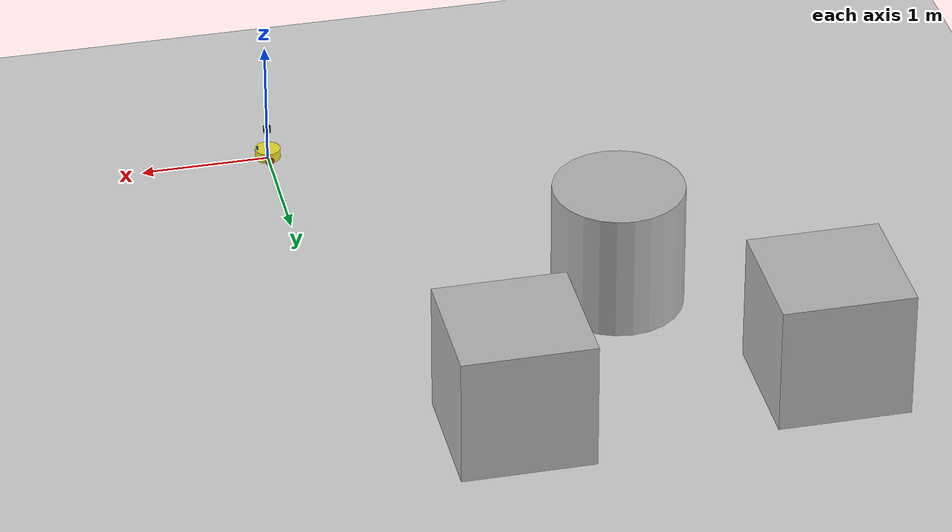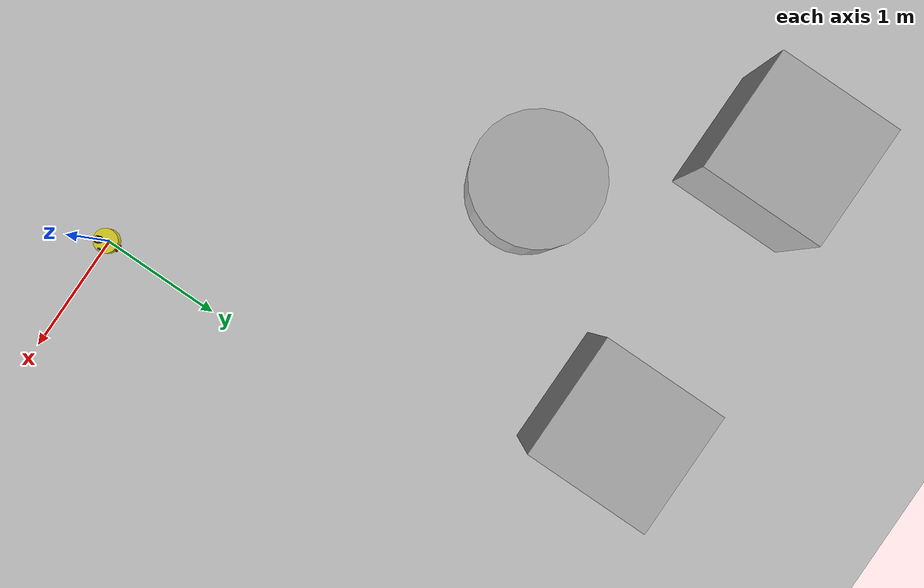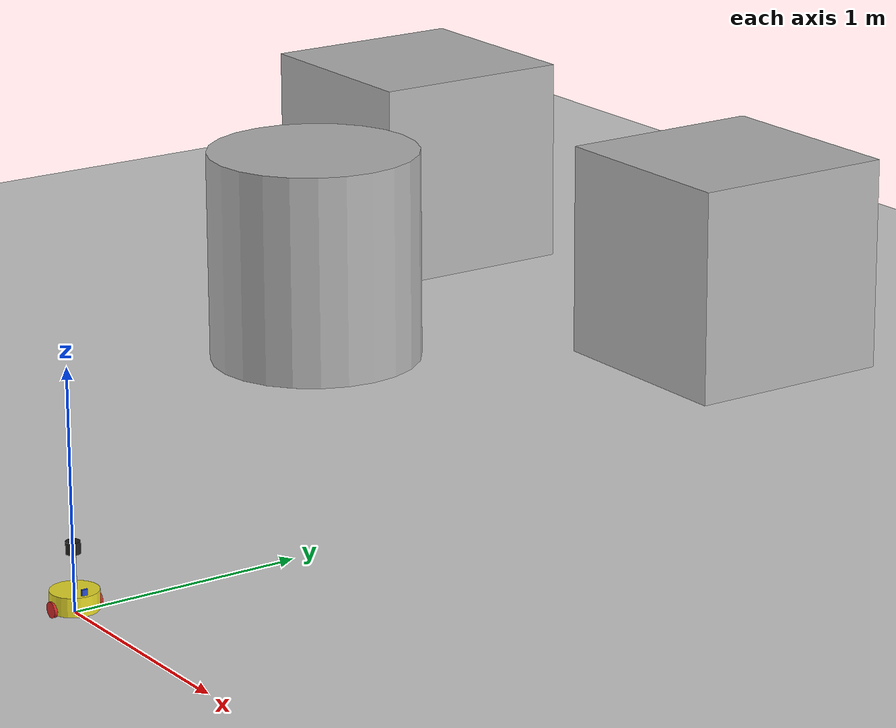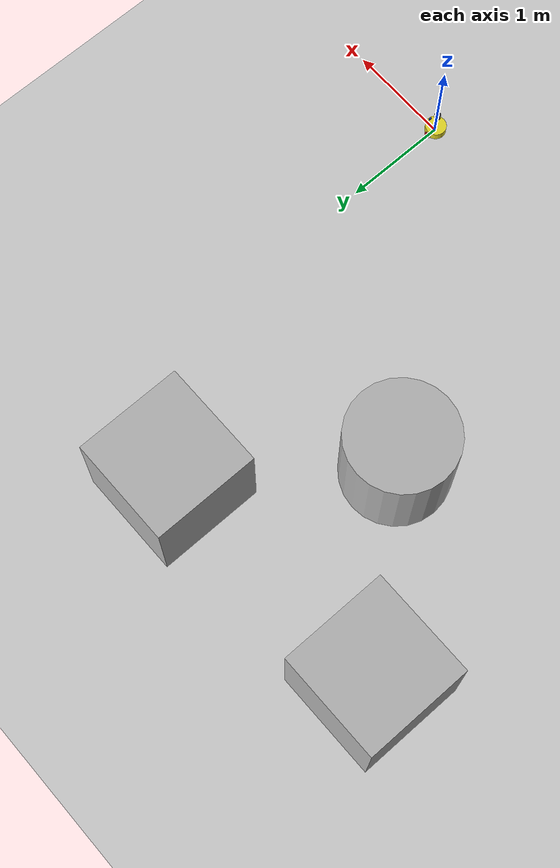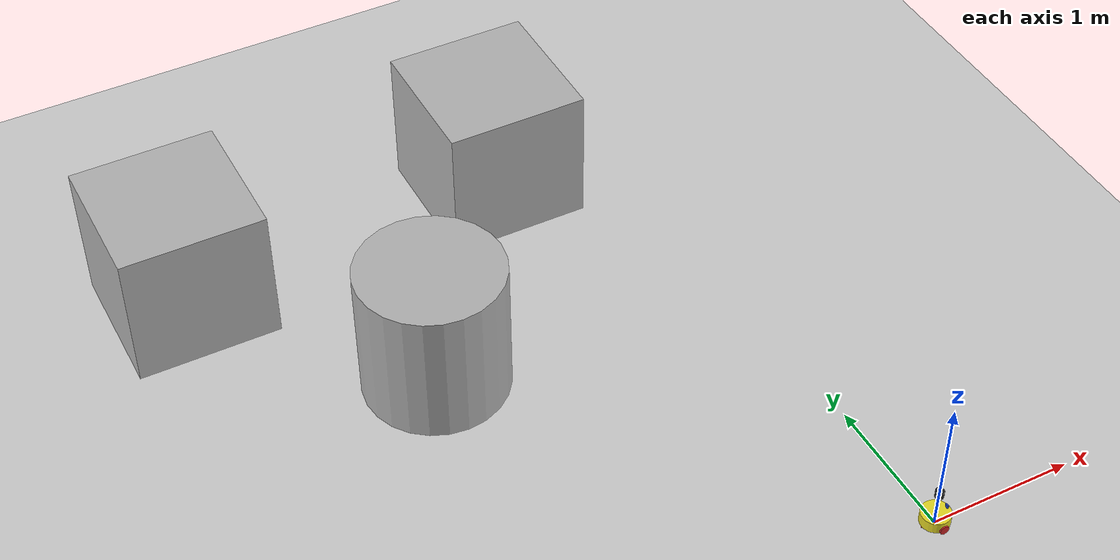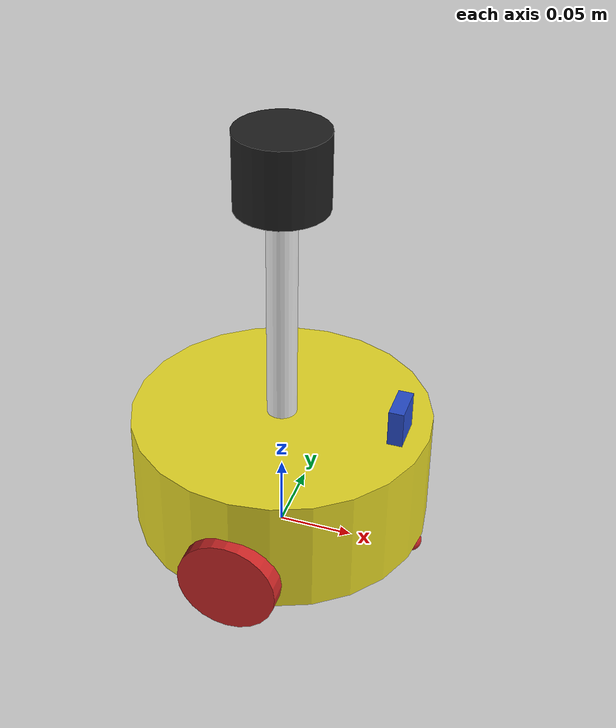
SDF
<sdf version='1.10'>
  <world name='car_demo'>
    <physics name='1ms' type='ignored'>
      <max_step_size>0.001</max_step_size>
      <real_time_factor>1</real_time_factor>
      <real_time_update_rate>1000</real_time_update_rate>
    </physics>
    <plugin name='gz::sim::systems::Physics' filename='gz-sim-physics-system'/>
    <plugin name='gz::sim::systems::UserCommands' filename='gz-sim-user-commands-system'/>
    <plugin name='gz::sim::systems::SceneBroadcaster' filename='gz-sim-scene-broadcaster-system'/>
    <plugin name='gz::sim::systems::Contact' filename='gz-sim-contact-system'/>
    <gravity>0 0 -9.8000000000000007</gravity>
    <magnetic_field>5.5644999999999998e-06 2.2875799999999999e-05 -4.2388400000000002e-05</magnetic_field>
    <atmosphere type='adiabatic'/>
    <scene>
      <ambient>0.400000006 0.400000006 0.400000006 1</ambient>
      <background>0.699999988 0.699999988 0.699999988 1</background>
      <shadows>true</shadows>
    </scene>
    <model name='ground_plane'>
      <static>true</static>
      <link name='link'>
        <collision name='collision'>
          <geometry>
            <plane>
              <normal>0 0 1</normal>
              <size>100 100</size>
            </plane>
          </geometry>
          <surface>
            <friction>
              <ode/>
            </friction>
            <bounce/>
            <contact/>
          </surface>
        </collision>
        <visual name='visual'>
          <geometry>
            <plane>
              <normal>0 0 1</normal>
              <size>100 100</size>
            </plane>
          </geometry>
          <material>
            <ambient>0.800000012 0.800000012 0.800000012 1</ambient>
            <diffuse>0.800000012 0.800000012 0.800000012 1</diffuse>
            <specular>0.800000012 0.800000012 0.800000012 1</specular>
          </material>
        </visual>
        <pose>0 0 0 0 0 0</pose>
        <inertial>
          <pose>0 0 0 0 0 0</pose>
          <mass>1</mass>
          <inertia>
            <ixx>1</ixx>
            <ixy>0</ixy>
            <ixz>0</ixz>
            <iyy>1</iyy>
            <iyz>0</iyz>
            <izz>1</izz>
          </inertia>
        </inertial>
        <enable_wind>false</enable_wind>
      </link>
      <pose>0 0 0 0 0 0</pose>
      <self_collide>false</self_collide>
    </model>
    <model name='box'>
      <pose>-1.0600000000000001 4.0599999999999996 0.5 0 0 0</pose>
      <link name='box_link'>
        <inertial>
          <inertia>
            <ixx>0.16666</ixx>
            <ixy>0</ixy>
            <ixz>0</ixz>
            <iyy>0.16666</iyy>
            <iyz>0</iyz>
            <izz>0.16666</izz>
          </inertia>
          <mass>1</mass>
          <pose>0 0 0 0 0 0</pose>
        </inertial>
        <collision name='box_collision'>
          <geometry>
            <box>
              <size>1 1 1</size>
            </box>
          </geometry>
          <surface>
            <friction>
              <ode/>
            </friction>
            <bounce/>
            <contact/>
          </surface>
        </collision>
        <visual name='box_visual'>
          <geometry>
            <box>
              <size>1 1 1</size>
            </box>
          </geometry>
          <material>
            <ambient>0.300000012 0.300000012 0.300000012 1</ambient>
            <diffuse>0.699999988 0.699999988 0.699999988 1</diffuse>
            <specular>1 1 1 1</specular>
          </material>
        </visual>
        <pose>0 0 0 0 0 0</pose>
        <enable_wind>false</enable_wind>
      </link>
      <static>false</static>
      <self_collide>false</self_collide>
    </model>
    <model name='cylinder'>
      <pose>-2.2032100243610824 2.5264647243480418 0.5 0 0 0</pose>
      <link name='cylinder_link'>
        <inertial>
          <inertia>
            <ixx>0.14580000000000001</ixx>
            <ixy>0</ixy>
            <ixz>0</ixz>
            <iyy>0.14580000000000001</iyy>
            <iyz>0</iyz>
            <izz>0.125</izz>
          </inertia>
          <mass>1</mass>
          <pose>0 0 0 0 0 0</pose>
        </inertial>
        <collision name='cylinder_collision'>
          <geometry>
            <cylinder>
              <radius>0.5</radius>
              <length>1</length>
            </cylinder>
          </geometry>
          <surface>
            <friction>
              <ode/>
            </friction>
            <bounce/>
            <contact/>
          </surface>
        </collision>
        <visual name='cylinder_visual'>
          <geometry>
            <cylinder>
              <radius>0.5</radius>
              <length>1</length>
            </cylinder>
          </geometry>
          <material>
            <ambient>0.300000012 0.300000012 0.300000012 1</ambient>
            <diffuse>0.699999988 0.699999988 0.699999988 1</diffuse>
            <specular>1 1 1 1</specular>
          </material>
        </visual>
        <pose>0 0 0 0 0 0</pose>
        <enable_wind>false</enable_wind>
      </link>
      <static>false</static>
      <self_collide>false</self_collide>
    </model>
    <model name='box_0'>
      <pose>-3.4326249775634334 3.9361975111597598 0.5 0 0 0</pose>
      <link name='box_link'>
        <inertial>
          <inertia>
            <ixx>0.16666</ixx>
            <ixy>0</ixy>
            <ixz>0</ixz>
            <iyy>0.16666</iyy>
            <iyz>0</iyz>
            <izz>0.16666</izz>
          </inertia>
          <mass>1</mass>
          <pose>0 0 0 0 0 0</pose>
        </inertial>
        <collision name='box_collision'>
          <geometry>
            <box>
              <size>1 1 1</size>
            </box>
          </geometry>
          <surface>
            <friction>
              <ode/>
            </friction>
            <bounce/>
            <contact/>
          </surface>
        </collision>
        <visual name='box_visual'>
          <geometry>
            <box>
              <size>1 1 1</size>
            </box>
          </geometry>
          <material>
            <ambient>0.300000012 0.300000012 0.300000012 1</ambient>
            <diffuse>0.699999988 0.699999988 0.699999988 1</diffuse>
            <specular>1 1 1 1</specular>
          </material>
        </visual>
        <pose>0 0 0 0 0 0</pose>
        <enable_wind>false</enable_wind>
      </link>
      <static>false</static>
      <self_collide>false</self_collide>
    </model>

    <model name="my_car">
      <self_collide>true</self_collide>
      <pose>0 0 0 0 0 0</pose>
      <include merge="true">
        <uri>urdf/my_car.sdf</uri>
      </include>

      <plugin
        filename="gz-sim-joint-state-publisher-system"
        name="ignition::gazebo::systems::JointStatePublisher">
      </plugin>

      <plugin
        filename="gz-sim-pose-publisher-system"
        name="ignition::gazebo::systems::PosePublisher">
        <publish_link_pose>true</publish_link_pose>
        <use_pose_vector_msg>true</use_pose_vector_msg>
        <static_publisher>true</static_publisher>
        <static_update_frequency>1</static_update_frequency>
        <update_frequency>1</update_frequency>
      </plugin>

      <!-- https://gazebosim.org/api/sim/8/classgz_1_1sim_1_1systems_1_1OdometryPublisher.html -->
      <plugin
        filename="gz-sim-odometry-publisher-system"
        name="ignition::gazebo::systems::OdometryPublisher">
        <odom_frame>my_car/odom</odom_frame>
        <robot_base_frame>my_car</robot_base_frame>
      </plugin>

      <plugin
          filename="gz-sim-sensors-system"
          name="gz::sim::systems::Sensors">
          <render_engine>ogre2</render_engine>
      </plugin>

    </model>

    <light name='sun' type='directional'>
      <pose>0 0 10 0 0 0</pose>
      <cast_shadows>true</cast_shadows>
      <intensity>1</intensity>
      <direction>-0.5 0.10000000000000001 -0.90000000000000002</direction>
      <diffuse>0.800000012 0.800000012 0.800000012 1</diffuse>
      <specular>0.200000003 0.200000003 0.200000003 1</specular>
      <attenuation>
        <range>1000</range>
        <linear>0.01</linear>
        <constant>0.90000000000000002</constant>
        <quadratic>0.001</quadratic>
      </attenuation>
      <spot>
        <inner_angle>0</inner_angle>
        <outer_angle>0</outer_angle>
        <falloff>0</falloff>
      </spot>
    </light>
  </world>
</sdf>

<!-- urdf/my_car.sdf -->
<sdf version='1.11'>
  <model name='my_car'>
    <link name='base_footprint'>
      <inertial>
        <pose>0 0 0 0 0 0</pose>
        <mass>0.01</mass>
        <inertia>
          <ixx>0</ixx>
          <ixy>0</ixy>
          <ixz>0</ixz>
          <iyy>0</iyy>
          <iyz>0</iyz>
          <izz>0</izz>
        </inertia>
      </inertial>
      <visual name='base_footprint_visual'>
        <pose>0 0 0 0 0 0</pose>
        <geometry>
          <sphere>
            <radius>0.001</radius>
          </sphere>
        </geometry>
      </visual>
    </link>
    <joint name='base_link2base_footprint' type='fixed'>
      <pose relative_to='base_footprint'>0 0 0.055 0 0 0</pose>
      <parent>base_footprint</parent>
      <child>base_link</child>
      <axis>
        <dynamics>
          <spring_reference>0</spring_reference>
          <spring_stiffness>0</spring_stiffness>
        </dynamics>
        <xyz>0 0 1</xyz>
        <limit>
          <lower>-inf</lower>
          <upper>inf</upper>
        </limit>
      </axis>
      <physics>
        <ode>
          <limit>
            <cfm>0</cfm>
            <erp>0.20000000000000001</erp>
          </limit>
        </ode>
      </physics>
    </joint>
    <link name='base_link'>
      <pose relative_to='base_link2base_footprint'>0 0 0 0 0 0</pose>
      <inertial>
        <pose>0 0 0 0 0 0</pose>
        <mass>0.5</mass>
        <inertia>
          <ixx>0.001516666666666667</ixx>
          <ixy>0</ixy>
          <ixz>0</ixz>
          <iyy>0.001516666666666667</iyy>
          <iyz>0</iyz>
          <izz>0.0025000000000000001</izz>
        </inertia>
      </inertial>
      <collision name='base_link_collision'>
        <pose>0 0 0 0 0 0</pose>
        <geometry>
          <cylinder>
            <length>0.080000000000000002</length>
            <radius>0.10000000000000001</radius>
          </cylinder>
        </geometry>
        <surface>
          <contact>
            <ode/>
          </contact>
          <friction>
            <ode/>
          </friction>
        </surface>
      </collision>
      <visual name='base_link_visual'>
        <pose>0 0 0 0 0 0</pose>
        <geometry>
          <cylinder>
            <length>0.080000000000000002</length>
            <radius>0.10000000000000001</radius>
          </cylinder>
        </geometry>
        <material>
          <script>
            <name>Gazebo/Yellow</name>
            <uri>file://media/materials/scripts/gazebo.material</uri>
          </script>
          <diffuse>0.625 0.37500003 0 0.5</diffuse>
          <ambient>0.625 0.37500003 0 0.5</ambient>
        </material>
      </visual>
    </link>
    <joint name='back_wheel2base_link' type='revolute'>
      <pose relative_to='base_link'>-0.092499999999999999 0 -0.047500000000000001 0 0 0</pose>
      <parent>base_link</parent>
      <child>back_wheel</child>
      <axis>
        <xyz>1 1 1</xyz>
        <limit>
          <lower>-inf</lower>
          <upper>inf</upper>
        </limit>
        <dynamics>
          <spring_reference>0</spring_reference>
          <spring_stiffness>0</spring_stiffness>
        </dynamics>
      </axis>
    </joint>
    <link name='back_wheel'>
      <pose relative_to='back_wheel2base_link'>0 0 0 0 0 0</pose>
      <inertial>
        <pose>0 0 0 0 0 0</pose>
        <mass>0.029999999999999999</mass>
        <inertia>
          <ixx>6.75e-07</ixx>
          <ixy>0</ixy>
          <ixz>0</ixz>
          <iyy>6.75e-07</iyy>
          <iyz>0</iyz>
          <izz>6.75e-07</izz>
        </inertia>
      </inertial>
      <collision name='back_wheel_collision'>
        <pose>0 0 0 0 0 0</pose>
        <geometry>
          <sphere>
            <radius>0.0074999999999999997</radius>
          </sphere>
        </geometry>
        <surface>
          <contact>
            <ode/>
          </contact>
          <friction>
            <ode/>
          </friction>
        </surface>
      </collision>
      <visual name='back_wheel_visual'>
        <pose>0 0 0 0 0 0</pose>
        <geometry>
          <sphere>
            <radius>0.0074999999999999997</radius>
          </sphere>
        </geometry>
        <material>
          <script>
            <name>Gazebo/Red</name>
            <uri>file://media/materials/scripts/gazebo.material</uri>
          </script>
          <diffuse>0 0 0 1</diffuse>
          <ambient>0 0 0 1</ambient>
        </material>
      </visual>
    </link>
    <joint name='camera2base_link' type='fixed'>
      <pose relative_to='base_link'>0.080000000000000002 0 0.052499999999999998 0 0 0</pose>
      <parent>base_link</parent>
      <child>camera</child>
      <axis>
        <dynamics>
          <spring_reference>0</spring_reference>
          <spring_stiffness>0</spring_stiffness>
        </dynamics>
        <xyz>0 0 1</xyz>
        <limit>
          <lower>-inf</lower>
          <upper>inf</upper>
        </limit>
      </axis>
      <physics>
        <ode>
          <limit>
            <cfm>0</cfm>
            <erp>0.20000000000000001</erp>
          </limit>
        </ode>
      </physics>
    </joint>
    <link name='camera'>
      <pose relative_to='camera2base_link'>0 0 0 0 0 0</pose>
      <inertial>
        <pose>0 0 0 0 0 0</pose>
        <mass>0.01</mass>
        <inertia>
          <ixx>6.0416666666666678e-07</ixx>
          <ixy>0</ixy>
          <ixz>0</ixz>
          <iyy>6.0416666666666678e-07</iyy>
          <iyz>0</iyz>
          <izz>1.0416666666666669e-06</izz>
        </inertia>
      </inertial>
      <collision name='camera_collision'>
        <pose>0 0 0 0 0 0</pose>
        <geometry>
          <box>
            <size>0.01 0.025000000000000001 0.025000000000000001</size>
          </box>
        </geometry>
        <surface>
          <contact>
            <ode/>
          </contact>
          <friction>
            <ode/>
          </friction>
        </surface>
      </collision>
      <visual name='camera_visual'>
        <pose>0 0 0 0 0 0</pose>
        <geometry>
          <box>
            <size>0.01 0.025000000000000001 0.025000000000000001</size>
          </box>
        </geometry>
        <material>
          <script>
            <name>Gazebo/Blue</name>
            <uri>file://media/materials/scripts/gazebo.material</uri>
          </script>
          <diffuse>0 0 0 1</diffuse>
          <ambient>0 0 0 1</ambient>
        </material>
      </visual>
    </link>
    <joint name='front_wheel2base_link' type='revolute'>
      <pose relative_to='base_link'>0.092499999999999999 0 -0.047500000000000001 0 0 0</pose>
      <parent>base_link</parent>
      <child>front_wheel</child>
      <axis>
        <xyz>1 1 1</xyz>
        <limit>
          <lower>-inf</lower>
          <upper>inf</upper>
        </limit>
        <dynamics>
          <spring_reference>0</spring_reference>
          <spring_stiffness>0</spring_stiffness>
        </dynamics>
      </axis>
    </joint>
    <link name='front_wheel'>
      <pose relative_to='front_wheel2base_link'>0 0 0 0 0 0</pose>
      <inertial>
        <pose>0 0 0 0 0 0</pose>
        <mass>0.029999999999999999</mass>
        <inertia>
          <ixx>6.75e-07</ixx>
          <ixy>0</ixy>
          <ixz>0</ixz>
          <iyy>6.75e-07</iyy>
          <iyz>0</iyz>
          <izz>6.75e-07</izz>
        </inertia>
      </inertial>
      <collision name='front_wheel_collision'>
        <pose>0 0 0 0 0 0</pose>
        <geometry>
          <sphere>
            <radius>0.0074999999999999997</radius>
          </sphere>
        </geometry>
        <surface>
          <contact>
            <ode/>
          </contact>
          <friction>
            <ode/>
          </friction>
        </surface>
      </collision>
      <visual name='front_wheel_visual'>
        <pose>0 0 0 0 0 0</pose>
        <geometry>
          <sphere>
            <radius>0.0074999999999999997</radius>
          </sphere>
        </geometry>
        <material>
          <script>
            <name>Gazebo/Red</name>
            <uri>file://media/materials/scripts/gazebo.material</uri>
          </script>
          <diffuse>0 0 0 1</diffuse>
          <ambient>0 0 0 1</ambient>
        </material>
      </visual>
    </link>
    <joint name='left_wheel2base_link' type='revolute'>
      <pose relative_to='base_link'>0 0.10000000000000001 -0.022499999999999999 0 0 0</pose>
      <parent>base_link</parent>
      <child>left_wheel</child>
      <axis>
        <xyz>0 1 0</xyz>
        <limit>
          <lower>-inf</lower>
          <upper>inf</upper>
        </limit>
        <dynamics>
          <spring_reference>0</spring_reference>
          <spring_stiffness>0</spring_stiffness>
        </dynamics>
      </axis>
    </joint>
    <link name='left_wheel'>
      <pose relative_to='left_wheel2base_link'>0 0 0 0 0 0</pose>
      <inertial>
        <pose>0 0 0 0 0 0</pose>
        <mass>0.050000000000000003</mass>
        <inertia>
          <ixx>1.4140625e-05</ixx>
          <ixy>0</ixy>
          <ixz>0</ixz>
          <iyy>1.4140625e-05</iyy>
          <iyz>0</iyz>
          <izz>2.6406250000000001e-05</izz>
        </inertia>
      </inertial>
      <collision name='left_wheel_collision'>
        <pose>0 0 0 1.5707963000000003 0 0</pose>
        <geometry>
          <cylinder>
            <length>0.014999999999999999</length>
            <radius>0.032500000000000001</radius>
          </cylinder>
        </geometry>
        <surface>
          <contact>
            <ode/>
          </contact>
          <friction>
            <ode/>
          </friction>
        </surface>
      </collision>
      <visual name='left_wheel_visual'>
        <pose>0 0 0 1.5707963000000003 0 0</pose>
        <geometry>
          <cylinder>
            <length>0.014999999999999999</length>
            <radius>0.032500000000000001</radius>
          </cylinder>
        </geometry>
        <material>
          <script>
            <name>Gazebo/Red</name>
            <uri>file://media/materials/scripts/gazebo.material</uri>
          </script>
          <diffuse>0 0 0 1</diffuse>
          <ambient>0 0 0 1</ambient>
        </material>
      </visual>
    </link>
    <joint name='right_wheel2base_link' type='revolute'>
      <pose relative_to='base_link'>0 -0.10000000000000001 -0.022499999999999999 0 0 0</pose>
      <parent>base_link</parent>
      <child>right_wheel</child>
      <axis>
        <xyz>0 1 0</xyz>
        <limit>
          <lower>-inf</lower>
          <upper>inf</upper>
        </limit>
        <dynamics>
          <spring_reference>0</spring_reference>
          <spring_stiffness>0</spring_stiffness>
        </dynamics>
      </axis>
    </joint>
    <link name='right_wheel'>
      <pose relative_to='right_wheel2base_link'>0 0 0 0 0 0</pose>
      <inertial>
        <pose>0 0 0 0 0 0</pose>
        <mass>0.050000000000000003</mass>
        <inertia>
          <ixx>1.4140625e-05</ixx>
          <ixy>0</ixy>
          <ixz>0</ixz>
          <iyy>1.4140625e-05</iyy>
          <iyz>0</iyz>
          <izz>2.6406250000000001e-05</izz>
        </inertia>
      </inertial>
      <collision name='right_wheel_collision'>
        <pose>0 0 0 1.5707963000000003 0 0</pose>
        <geometry>
          <cylinder>
            <length>0.014999999999999999</length>
            <radius>0.032500000000000001</radius>
          </cylinder>
        </geometry>
        <surface>
          <contact>
            <ode/>
          </contact>
          <friction>
            <ode/>
          </friction>
        </surface>
      </collision>
      <visual name='right_wheel_visual'>
        <pose>0 0 0 1.5707963000000003 0 0</pose>
        <geometry>
          <cylinder>
            <length>0.014999999999999999</length>
            <radius>0.032500000000000001</radius>
          </cylinder>
        </geometry>
        <material>
          <script>
            <name>Gazebo/Red</name>
            <uri>file://media/materials/scripts/gazebo.material</uri>
          </script>
          <diffuse>0 0 0 1</diffuse>
          <ambient>0 0 0 1</ambient>
        </material>
      </visual>
    </link>
    <joint name='support2base_link' type='fixed'>
      <pose relative_to='base_link'>0 0 0.115 0 0 0</pose>
      <parent>base_link</parent>
      <child>support</child>
      <axis>
        <dynamics>
          <spring_reference>0</spring_reference>
          <spring_stiffness>0</spring_stiffness>
        </dynamics>
        <xyz>0 0 1</xyz>
        <limit>
          <lower>-inf</lower>
          <upper>inf</upper>
        </limit>
      </axis>
      <physics>
        <ode>
          <limit>
            <cfm>0</cfm>
            <erp>0.20000000000000001</erp>
          </limit>
        </ode>
      </physics>
    </joint>
    <link name='support'>
      <pose relative_to='support2base_link'>0 0 0 0 0 0</pose>
      <inertial>
        <pose>0 0 0 0 0 0</pose>
        <mass>0.02</mass>
        <inertia>
          <ixx>3.8000000000000002e-05</ixx>
          <ixy>0</ixy>
          <ixz>0</ixz>
          <iyy>3.8000000000000002e-05</iyy>
          <iyz>0</iyz>
          <izz>9.9999999999999995e-07</izz>
        </inertia>
      </inertial>
      <collision name='support_collision'>
        <pose>0 0 0 0 0 0</pose>
        <geometry>
          <cylinder>
            <length>0.14999999999999999</length>
            <radius>0.01</radius>
          </cylinder>
        </geometry>
        <surface>
          <contact>
            <ode/>
          </contact>
          <friction>
            <ode/>
          </friction>
        </surface>
      </collision>
      <visual name='support_visual'>
        <pose>0 0 0 0 0 0</pose>
        <geometry>
          <cylinder>
            <length>0.14999999999999999</length>
            <radius>0.01</radius>
          </cylinder>
        </geometry>
        <material>
          <script>
            <name>Gazebo/White</name>
            <uri>file://media/materials/scripts/gazebo.material</uri>
          </script>
          <diffuse>1 0.25 0 0.800000012</diffuse>
          <ambient>1 0.25 0 0.800000012</ambient>
        </material>
      </visual>
    </link>
    <joint name='laser2support' type='fixed'>
      <pose relative_to='support'>0 0 0.10000000000000001 0 0 0</pose>
      <parent>support</parent>
      <child>laser</child>
      <axis>
        <dynamics>
          <spring_reference>0</spring_reference>
          <spring_stiffness>0</spring_stiffness>
        </dynamics>
        <xyz>0 0 1</xyz>
        <limit>
          <lower>-inf</lower>
          <upper>inf</upper>
        </limit>
      </axis>
      <physics>
        <ode>
          <limit>
            <cfm>0</cfm>
            <erp>0.20000000000000001</erp>
          </limit>
        </ode>
      </physics>
    </joint>
    <link name='laser'>
      <pose relative_to='laser2support'>0 0 0 0 0 0</pose>
      <inertial>
        <pose>0 0 0 0 0 0</pose>
        <mass>0.10000000000000001</mass>
        <inertia>
          <ixx>4.3333333333333327e-05</ixx>
          <ixy>0</ixy>
          <ixz>0</ixz>
          <iyy>4.3333333333333327e-05</iyy>
          <iyz>0</iyz>
          <izz>4.5000000000000003e-05</izz>
        </inertia>
      </inertial>
      <collision name='laser_collision'>
        <pose>0 0 0 0 0 0</pose>
        <geometry>
          <cylinder>
            <length>0.050000000000000003</length>
            <radius>0.029999999999999999</radius>
          </cylinder>
        </geometry>
        <surface>
          <contact>
            <ode/>
          </contact>
          <friction>
            <ode/>
          </friction>
        </surface>
      </collision>
      <visual name='laser_visual'>
        <pose>0 0 0 0 0 0</pose>
        <geometry>
          <cylinder>
            <length>0.050000000000000003</length>
            <radius>0.029999999999999999</radius>
          </cylinder>
        </geometry>
        <material>
          <script>
            <name>Gazebo/Black</name>
            <uri>file://media/materials/scripts/gazebo.material</uri>
          </script>
          <diffuse>0 0 0 1</diffuse>
          <ambient>0 0 0 1</ambient>
        </material>
      </visual>
      <sensor name='rplidar' type='ray'>
        <pose>0 0 0 0 0 0</pose>
        <topic>lidar</topic>
        <update_rate>5.5</update_rate>
        <visualize>true</visualize>
        <ray>
          <scan>
            <horizontal>
              <samples>360</samples>
              <resolution>1</resolution>
              <min_angle>-3</min_angle>
              <max_angle>3</max_angle>
            </horizontal>
          </scan>
          <range>
            <min>0.10000000000000001</min>
            <max>30</max>
            <resolution>0.01</resolution>
          </range>
          <noise>
            <type>gaussian</type>
            <mean>0</mean>
            <stddev>0.01</stddev>
          </noise>
        </ray>
      </sensor>
    </link>
    <plugin name='gz::sim::systems::DiffDrive' filename='gz-sim-diff-drive-system'>
      <left_joint>left_wheel2base_link</left_joint>
      <right_joint>right_wheel2base_link</right_joint>
      <wheel_separation>0.2</wheel_separation>
      <wheel_radius>0.065</wheel_radius>
      <odom_publish_frequency>1</odom_publish_frequency>
      <max_torque>30</max_torque>
      <max_acceleration>1.8</max_acceleration>
    </plugin>
  </model>
</sdf>
